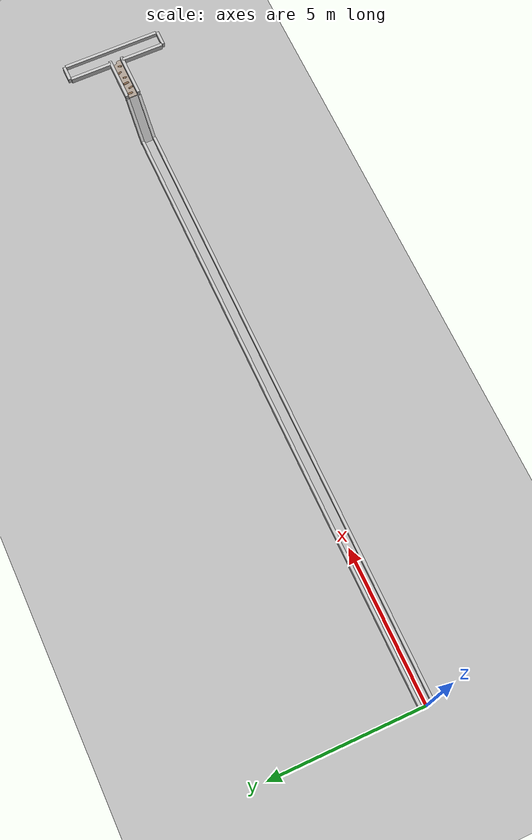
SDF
<?xml version="1.0" encoding="utf-8"?>
<sdf version="1.6">
  <world name="course_test">

    <!-- directional light -->
    <light type="directional" name="sun">
      <pose>0 0 10 0 0 0</pose>
      <diffuse>0.8 0.8 0.8 1</diffuse>
      <specular>0.2 0.2 0.2 1</specular>
      <direction>-0.5 0.1 -0.9</direction>
      <cast_shadows>true</cast_shadows>
    </light>

    <!-- ground plane -->
    <model name="ground_plane">
      <static>true</static>
      <link name="link">
        <collision name="collision">
          <geometry><plane><normal>0 0 1</normal><size>100 100</size></plane></geometry>
        </collision>
        <visual name="visual">
          <geometry><plane><normal>0 0 1</normal><size>100 100</size></plane></geometry>
          <material>
            <ambient>0.5 0.5 0.5 1</ambient>
            <diffuse>0.7 0.7 0.7 1</diffuse>
          </material>
        </visual>
      </link>
    </model>

    <!-- COURSE: 20000mm flat -> 1600mm 45deg uphill -> 1600mm disturbance -> T-junction -->
    <!-- Path width: 0.3m   Wall height: 0.2m   Wall thickness: 0.1m   Floor thickness: 0.05m -->

    <model name="test_course">
      <static>true</static>

      <!-- ===== SEGMENT 1: flat straight, X = 0 -> 20, Z = 0 ===== -->
      <link name="seg1_floor">
        <pose>10.0 0 0.025 0 0 0</pose>
        <collision name="collision">
          <geometry><box><size>20.0 0.3 0.05</size></box></geometry>
          <surface>
            <friction><ode><mu>1.0</mu><mu2>1.0</mu2></ode></friction>
          </surface>
        </collision>
        <visual name="visual">
          <geometry><box><size>20.0 0.3 0.05</size></box></geometry>
          <material><ambient>0.7 0.7 0.7 1</ambient><diffuse>0.7 0.7 0.7 1</diffuse></material>
        </visual>
      </link>

      <link name="seg1_wall_left">
        <pose>10.0 -0.2 0.1 0 0 0</pose>
        <collision name="collision">
          <geometry><box><size>20.0 0.1 0.2</size></box></geometry>
        </collision>
        <visual name="visual">
          <geometry><box><size>20.0 0.1 0.2</size></box></geometry>
          <material><ambient>0.75 0.75 0.75 1</ambient><diffuse>0.75 0.75 0.75 1</diffuse></material>
        </visual>
      </link>

      <link name="seg1_wall_right">
        <pose>10.0 0.2 0.1 0 0 0</pose>
        <collision name="collision">
          <geometry><box><size>20.0 0.1 0.2</size></box></geometry>
        </collision>
        <visual name="visual">
          <geometry><box><size>20.0 0.1 0.2</size></box></geometry>
          <material><ambient>0.75 0.75 0.75 1</ambient><diffuse>0.75 0.75 0.75 1</diffuse></material>
        </visual>
      </link>

      <!-- ===== SEGMENT 2: 45deg uphill ramp, length 1.6m along slope ===== -->
      <!-- delta_X = delta_Z = 1.6 * cos45 = 1.1314 -->
      <!-- start (20,0,0), end (21.1314,0,1.1314), centre (20.5657,0,0.5657) -->
      <link name="seg2_floor">
        <pose>20.5657 0 0.5657 0 -0.7854 0</pose>
        <collision name="collision">
          <geometry><box><size>1.6 0.3 0.05</size></box></geometry>
          <surface>
            <friction><ode><mu>1.0</mu><mu2>1.0</mu2></ode></friction>
          </surface>
        </collision>
        <visual name="visual">
          <geometry><box><size>1.6 0.3 0.05</size></box></geometry>
          <material><ambient>0.7 0.7 0.7 1</ambient><diffuse>0.7 0.7 0.7 1</diffuse></material>
        </visual>
      </link>

      <link name="seg2_wall_left">
        <pose>20.5657 -0.2 0.5657 0 -0.7854 0</pose>
        <collision name="collision">
          <geometry><box><size>1.6 0.1 0.2</size></box></geometry>
        </collision>
        <visual name="visual">
          <geometry><box><size>1.6 0.1 0.2</size></box></geometry>
          <material><ambient>0.75 0.75 0.75 1</ambient><diffuse>0.75 0.75 0.75 1</diffuse></material>
        </visual>
      </link>

      <link name="seg2_wall_right">
        <pose>20.5657 0.2 0.5657 0 -0.7854 0</pose>
        <collision name="collision">
          <geometry><box><size>1.6 0.1 0.2</size></box></geometry>
        </collision>
        <visual name="visual">
          <geometry><box><size>1.6 0.1 0.2</size></box></geometry>
          <material><ambient>0.75 0.75 0.75 1</ambient><diffuse>0.75 0.75 0.75 1</diffuse></material>
        </visual>
      </link>

      <!-- ===== SEGMENT 3: disturbance (ground bumps), X = 21.1314 -> 22.5814, Z = 1.1314 ===== -->
      <link name="seg3_floor">
        <pose>21.8564 0 1.1241 0 0 0</pose>
        <collision name="collision">
          <geometry><box><size>1.45 0.3 0.05</size></box></geometry>
          <surface>
            <friction><ode><mu>1.0</mu><mu2>1.0</mu2></ode></friction>
          </surface>
        </collision>
        <visual name="visual">
          <geometry><box><size>1.45 0.3 0.05</size></box></geometry>
          <material><ambient>0.65 0.60 0.55 1</ambient><diffuse>0.65 0.60 0.55 1</diffuse></material>
        </visual>
      </link>

      <link name="seg3_wall_left">
        <pose>21.8564 -0.2 1.1991 0 0 0</pose>
        <collision name="collision">
          <geometry><box><size>1.45 0.1 0.2</size></box></geometry>
        </collision>
        <visual name="visual">
          <geometry><box><size>1.45 0.1 0.2</size></box></geometry>
          <material><ambient>0.75 0.75 0.75 1</ambient><diffuse>0.75 0.75 0.75 1</diffuse></material>
        </visual>
      </link>

      <link name="seg3_wall_right">
        <pose>21.8564 0.2 1.1991 0 0 0</pose>
        <collision name="collision">
          <geometry><box><size>1.45 0.1 0.2</size></box></geometry>
        </collision>
        <visual name="visual">
          <geometry><box><size>1.45 0.1 0.2</size></box></geometry>
          <material><ambient>0.75 0.75 0.75 1</ambient><diffuse>0.75 0.75 0.75 1</diffuse></material>
        </visual>
      </link>

      <!-- disturbance bumps on seg3 floor surface (Z_top = 1.1314) -->
      <link name="seg3_bump_01">
        <pose>21.28 0.04 1.1541 0 0 0.0</pose>
        <collision name="collision">
          <geometry><box><size>0.06 0.16 0.010</size></box></geometry>
          <surface><friction><ode><mu>1.0</mu><mu2>1.0</mu2></ode></friction></surface>
        </collision>
        <visual name="visual">
          <geometry><box><size>0.06 0.16 0.010</size></box></geometry>
          <material><ambient>0.55 0.42 0.30 1</ambient><diffuse>0.55 0.42 0.30 1</diffuse></material>
        </visual>
      </link>

      <link name="seg3_bump_02">
        <pose>21.48 -0.06 1.1531 0 0 0.2</pose>
        <collision name="collision">
          <geometry><box><size>0.05 0.14 0.008</size></box></geometry>
          <surface><friction><ode><mu>1.0</mu><mu2>1.0</mu2></ode></friction></surface>
        </collision>
        <visual name="visual">
          <geometry><box><size>0.05 0.14 0.008</size></box></geometry>
          <material><ambient>0.55 0.42 0.30 1</ambient><diffuse>0.55 0.42 0.30 1</diffuse></material>
        </visual>
      </link>

      <link name="seg3_bump_03">
        <pose>21.68 0.02 1.1541 0 0 0.1</pose>
        <collision name="collision">
          <geometry><box><size>0.07 0.18 0.010</size></box></geometry>
          <surface><friction><ode><mu>1.0</mu><mu2>1.0</mu2></ode></friction></surface>
        </collision>
        <visual name="visual">
          <geometry><box><size>0.07 0.18 0.010</size></box></geometry>
          <material><ambient>0.50 0.38 0.28 1</ambient><diffuse>0.50 0.38 0.28 1</diffuse></material>
        </visual>
      </link>

      <link name="seg3_bump_04">
        <pose>21.90 -0.03 1.1536 0 0 -0.15</pose>
        <collision name="collision">
          <geometry><box><size>0.05 0.12 0.009</size></box></geometry>
          <surface><friction><ode><mu>1.0</mu><mu2>1.0</mu2></ode></friction></surface>
        </collision>
        <visual name="visual">
          <geometry><box><size>0.05 0.12 0.009</size></box></geometry>
          <material><ambient>0.55 0.42 0.30 1</ambient><diffuse>0.55 0.42 0.30 1</diffuse></material>
        </visual>
      </link>

      <link name="seg3_bump_05">
        <pose>22.12 0.07 1.1541 0 0 0.3</pose>
        <collision name="collision">
          <geometry><box><size>0.06 0.15 0.010</size></box></geometry>
          <surface><friction><ode><mu>1.0</mu><mu2>1.0</mu2></ode></friction></surface>
        </collision>
        <visual name="visual">
          <geometry><box><size>0.06 0.15 0.010</size></box></geometry>
          <material><ambient>0.50 0.38 0.28 1</ambient><diffuse>0.50 0.38 0.28 1</diffuse></material>
        </visual>
      </link>

      <link name="seg3_bump_06">
        <pose>22.36 -0.05 1.1526 0 0 -0.25</pose>
        <collision name="collision">
          <geometry><box><size>0.05 0.13 0.007</size></box></geometry>
          <surface><friction><ode><mu>1.0</mu><mu2>1.0</mu2></ode></friction></surface>
        </collision>
        <visual name="visual">
          <geometry><box><size>0.05 0.13 0.007</size></box></geometry>
          <material><ambient>0.55 0.42 0.30 1</ambient><diffuse>0.55 0.42 0.30 1</diffuse></material>
        </visual>
      </link>

      <!-- ===== SEGMENT 4: T-junction, approach joins at X = 22.7314, cross path spans Y = -1.6 -> 1.6 ===== -->

      <!-- junction floor: 0.5m wide in X, 3.2m long in Y, at Z = 1.1314 -->
      <link name="junction_floor">
        <pose>22.7314 0 1.1241 0 0 0</pose>
        <collision name="collision">
          <geometry><box><size>0.5 3.2 0.05</size></box></geometry>
          <surface>
            <friction><ode><mu>1.0</mu><mu2>1.0</mu2></ode></friction>
          </surface>
        </collision>
        <visual name="visual">
          <geometry><box><size>0.5 3.2 0.05</size></box></geometry>
          <material><ambient>0.7 0.7 0.7 1</ambient><diffuse>0.7 0.7 0.7 1</diffuse></material>
        </visual>
      </link>

      <!-- junction left wall, north half (gap at Y ~ 0 for approach arm) -->
      <!-- left wall X = 22.7314 - 0.25 - 0.05 = 22.4814 -->
      <link name="junction_wall_left_north">
        <pose>22.4814 0.9 1.1991 0 0 0</pose>
        <collision name="collision">
          <geometry><box><size>0.1 1.4 0.2</size></box></geometry>
        </collision>
        <visual name="visual">
          <geometry><box><size>0.1 1.4 0.2</size></box></geometry>
          <material><ambient>0.75 0.75 0.75 1</ambient><diffuse>0.75 0.75 0.75 1</diffuse></material>
        </visual>
      </link>

      <!-- junction left wall, south half -->
      <link name="junction_wall_left_south">
        <pose>22.4814 -0.9 1.1991 0 0 0</pose>
        <collision name="collision">
          <geometry><box><size>0.1 1.4 0.2</size></box></geometry>
        </collision>
        <visual name="visual">
          <geometry><box><size>0.1 1.4 0.2</size></box></geometry>
          <material><ambient>0.75 0.75 0.75 1</ambient><diffuse>0.75 0.75 0.75 1</diffuse></material>
        </visual>
      </link>

      <!-- junction right wall (full length), X = 22.7314 + 0.25 + 0.05 = 22.9814 -->
      <link name="junction_wall_right">
        <pose>22.9814 0 1.1991 0 0 0</pose>
        <collision name="collision">
          <geometry><box><size>0.1 3.2 0.2</size></box></geometry>
        </collision>
        <visual name="visual">
          <geometry><box><size>0.1 3.2 0.2</size></box></geometry>
          <material><ambient>0.75 0.75 0.75 1</ambient><diffuse>0.75 0.75 0.75 1</diffuse></material>
        </visual>
      </link>

      <!-- junction end cap walls at Y = +/-1.6 -->
      <link name="junction_wall_end_pos_y">
        <pose>22.7314 1.65 1.1991 0 0 0</pose>
        <collision name="collision">
          <geometry><box><size>0.5 0.1 0.2</size></box></geometry>
        </collision>
        <visual name="visual">
          <geometry><box><size>0.5 0.1 0.2</size></box></geometry>
          <material><ambient>0.75 0.75 0.75 1</ambient><diffuse>0.75 0.75 0.75 1</diffuse></material>
        </visual>
      </link>

      <link name="junction_wall_end_neg_y">
        <pose>22.7314 -1.65 1.1991 0 0 0</pose>
        <collision name="collision">
          <geometry><box><size>0.5 0.1 0.2</size></box></geometry>
        </collision>
        <visual name="visual">
          <geometry><box><size>0.5 0.1 0.2</size></box></geometry>
          <material><ambient>0.75 0.75 0.75 1</ambient><diffuse>0.75 0.75 0.75 1</diffuse></material>
        </visual>
      </link>

    </model>

  </world>
</sdf>
